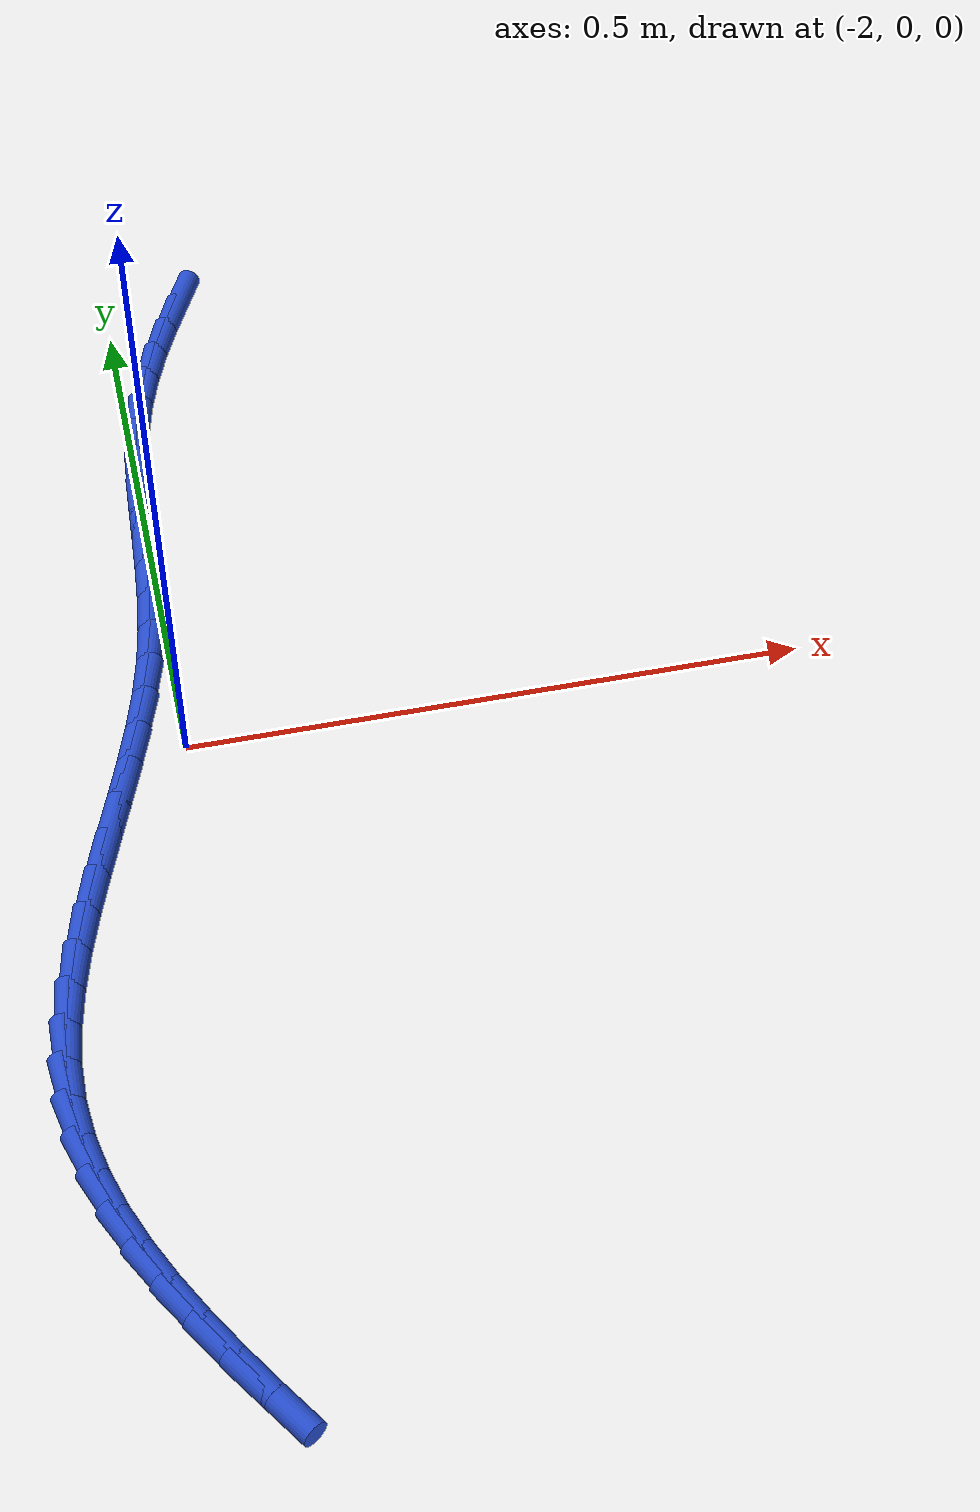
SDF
<sdf version="1.6">
 <world name="default">
  <model name="ground_plane">
   <static>1</static>
   <link name="link">
    <collision name="collision">
     <geometry><plane><normal>0 0 1</normal><size>100 100</size></plane></geometry>
     <surface><friction><ode><mu>100</mu><mu2>50</mu2></ode></friction></surface>
    </collision>
    <visual name="visual">
     <cast_shadows>0</cast_shadows>
     <geometry><plane><normal>0 0 1</normal><size>100 100</size></plane></geometry>
     <material>
      <script><uri>file://media/materials/scripts/gazebo.material</uri><name>Gazebo/WhiteGlow</name></script>
     </material>
    </visual>
   </link>
  </model>
  <model name="line">
   <link name="link_82">
    <pose>-1.934549190054985 0.5253844064788971 0.01 0 1.57 1.1429916028088454</pose>
    <collision name="collision">
     <geometry><cylinder><radius>0.01</radius><length>0.08</length></cylinder></geometry>
    </collision>
    <visual name="visual">
     <material>
      <script><name>Gazebo/Blue</name><uri>file://media/materials/scripts/gazebo.material</uri></script>
     </material>
     <geometry><cylinder><radius>0.01</radius><length>0.08</length></cylinder></geometry>
    </visual>
   </link>
   <link name="link_83">
    <pose>-1.9489851773383136 0.49372422594239274 0.01 0 1.57 1.177477443788008</pose>
    <collision name="collision">
     <geometry><cylinder><radius>0.01</radius><length>0.08</length></cylinder></geometry>
    </collision>
    <visual name="visual">
     <material>
      <script><name>Gazebo/Blue</name><uri>file://media/materials/scripts/gazebo.material</uri></script>
     </material>
     <geometry><cylinder><radius>0.01</radius><length>0.08</length></cylinder></geometry>
    </visual>
   </link>
   <link name="link_84">
    <pose>-1.9621975246120722 0.46188263261865464 0.01 0 1.57 1.2239319103950599</pose>
    <collision name="collision">
     <geometry><cylinder><radius>0.01</radius><length>0.08</length></cylinder></geometry>
    </collision>
    <visual name="visual">
     <material>
      <script><name>Gazebo/Blue</name><uri>file://media/materials/scripts/gazebo.material</uri></script>
     </material>
     <geometry><cylinder><radius>0.01</radius><length>0.08</length></cylinder></geometry>
    </visual>
   </link>
   <link name="link_85">
    <pose>-1.9738176590959098 0.4297365622214939 0.01 0 1.57 1.2825177035107371</pose>
    <collision name="collision">
     <geometry><cylinder><radius>0.01</radius><length>0.08</length></cylinder></geometry>
    </collision>
    <visual name="visual">
     <material>
      <script><name>Gazebo/Blue</name><uri>file://media/materials/scripts/gazebo.material</uri></script>
     </material>
     <geometry><cylinder><radius>0.01</radius><length>0.08</length></cylinder></geometry>
    </visual>
   </link>
   <link name="link_86">
    <pose>-1.9834770080094717 0.3971629504647221 0.01 0 1.57 1.3525835714497194</pose>
    <collision name="collision">
     <geometry><cylinder><radius>0.01</radius><length>0.08</length></cylinder></geometry>
    </collision>
    <visual name="visual">
     <material>
      <script><name>Gazebo/Blue</name><uri>file://media/materials/scripts/gazebo.material</uri></script>
     </material>
     <geometry><cylinder><radius>0.01</radius><length>0.08</length></cylinder></geometry>
    </visual>
   </link>
   <link name="link_87">
    <pose>-1.990821381539933 0.364041926400388 0.01 0 1.57 1.4204549258014072</pose>
    <collision name="collision">
     <geometry><cylinder><radius>0.01</radius><length>0.08</length></cylinder></geometry>
    </collision>
    <visual name="visual">
     <material>
      <script><name>Gazebo/Blue</name><uri>file://media/materials/scripts/gazebo.material</uri></script>
     </material>
     <geometry><cylinder><radius>0.01</radius><length>0.08</length></cylinder></geometry>
    </visual>
   </link>
   <link name="link_88">
    <pose>-1.9959253632970084 0.3303488163034121 0.01 0 1.57 1.4707918321046425</pose>
    <collision name="collision">
     <geometry><cylinder><radius>0.01</radius><length>0.08</length></cylinder></geometry>
    </collision>
    <visual name="visual">
     <material>
      <script><name>Gazebo/Blue</name><uri>file://media/materials/scripts/gazebo.material</uri></script>
     </material>
     <geometry><cylinder><radius>0.01</radius><length>0.08</length></cylinder></geometry>
    </visual>
   </link>
   <link name="link_89">
    <pose>-1.9993550325085527 0.2961680693920715 0.01 0 1.57 1.5029832729504529</pose>
    <collision name="collision">
     <geometry><cylinder><radius>0.01</radius><length>0.08</length></cylinder></geometry>
    </collision>
    <visual name="visual">
     <material>
      <script><name>Gazebo/Blue</name><uri>file://media/materials/scripts/gazebo.material</uri></script>
     </material>
     <geometry><cylinder><radius>0.01</radius><length>0.08</length></cylinder></geometry>
    </visual>
   </link>
   <link name="link_90">
    <pose>-2.0017034691504763 0.2615901296503986 0.01 0 1.57 1.5175201261933395</pose>
    <collision name="collision">
     <geometry><cylinder><radius>0.01</radius><length>0.08</length></cylinder></geometry>
    </collision>
    <visual name="visual">
     <material>
      <script><name>Gazebo/Blue</name><uri>file://media/materials/scripts/gazebo.material</uri></script>
     </material>
     <geometry><cylinder><radius>0.01</radius><length>0.08</length></cylinder></geometry>
    </visual>
   </link>
   <link name="link_91">
    <pose>-2.003563753198689 0.22670544106242596 0.01 0 1.57 1.514867371000532</pose>
    <collision name="collision">
     <geometry><cylinder><radius>0.01</radius><length>0.08</length></cylinder></geometry>
    </collision>
    <visual name="visual">
     <material>
      <script><name>Gazebo/Blue</name><uri>file://media/materials/scripts/gazebo.material</uri></script>
     </material>
     <geometry><cylinder><radius>0.01</radius><length>0.08</length></cylinder></geometry>
    </visual>
   </link>
   <link name="link_92">
    <pose>-2.0055289646291015 0.1916044476121862 0.01 0 1.57 1.4953379256269574</pose>
    <collision name="collision">
     <geometry><cylinder><radius>0.01</radius><length>0.08</length></cylinder></geometry>
    </collision>
    <visual name="visual">
     <material>
      <script><name>Gazebo/Blue</name><uri>file://media/materials/scripts/gazebo.material</uri></script>
     </material>
     <geometry><cylinder><radius>0.01</radius><length>0.08</length></cylinder></geometry>
    </visual>
   </link>
   <link name="link_93">
    <pose>-2.008192183417624 0.15637759328371176 0.01 0 1.57 1.4591230185264452</pose>
    <collision name="collision">
     <geometry><cylinder><radius>0.01</radius><length>0.08</length></cylinder></geometry>
    </collision>
    <visual name="visual">
     <material>
      <script><name>Gazebo/Blue</name><uri>file://media/materials/scripts/gazebo.material</uri></script>
     </material>
     <geometry><cylinder><radius>0.01</radius><length>0.08</length></cylinder></geometry>
    </visual>
   </link>
   <link name="link_94">
    <pose>-2.012146489540166 0.12111532206103517 0.01 0 1.57 1.4064709449296815</pose>
    <collision name="collision">
     <geometry><cylinder><radius>0.01</radius><length>0.08</length></cylinder></geometry>
    </collision>
    <visual name="visual">
     <material>
      <script><name>Gazebo/Blue</name><uri>file://media/materials/scripts/gazebo.material</uri></script>
     </material>
     <geometry><cylinder><radius>0.01</radius><length>0.08</length></cylinder></geometry>
    </visual>
   </link>
   <link name="link_95">
    <pose>-2.0179845801398617 0.08590805603592133 0.01 0 1.57 1.345119470355545</pose>
    <collision name="collision">
     <geometry><cylinder><radius>0.01</radius><length>0.08</length></cylinder></geometry>
    </collision>
    <visual name="visual">
     <material>
      <script><name>Gazebo/Blue</name><uri>file://media/materials/scripts/gazebo.material</uri></script>
     </material>
     <geometry><cylinder><radius>0.01</radius><length>0.08</length></cylinder></geometry>
    </visual>
   </link>
   <link name="link_96">
    <pose>-2.0260377818558566 0.050831270844779744 0.01 0 1.57 1.2949176496692092</pose>
    <collision name="collision">
     <geometry><cylinder><radius>0.01</radius><length>0.08</length></cylinder></geometry>
    </collision>
    <visual name="visual">
     <material>
      <script><name>Gazebo/Blue</name><uri>file://media/materials/scripts/gazebo.material</uri></script>
     </material>
     <geometry><cylinder><radius>0.01</radius><length>0.08</length></cylinder></geometry>
    </visual>
   </link>
   <link name="link_97">
    <pose>-2.0359212200282153 0.015919486199079496 0.01 0 1.57 1.2585591991339506</pose>
    <collision name="collision">
     <geometry><cylinder><radius>0.01</radius><length>0.08</length></cylinder></geometry>
    </collision>
    <visual name="visual">
     <material>
      <script><name>Gazebo/Blue</name><uri>file://media/materials/scripts/gazebo.material</uri></script>
     </material>
     <geometry><cylinder><radius>0.01</radius><length>0.08</length></cylinder></geometry>
    </visual>
   </link>
   <link name="link_98">
    <pose>-2.0471284428254632 -0.018799730572395774 0.01 0 1.57 1.2354164167242352</pose>
    <collision name="collision">
     <geometry><cylinder><radius>0.01</radius><length>0.08</length></cylinder></geometry>
    </collision>
    <visual name="visual">
     <material>
      <script><name>Gazebo/Blue</name><uri>file://media/materials/scripts/gazebo.material</uri></script>
     </material>
     <geometry><cylinder><radius>0.01</radius><length>0.08</length></cylinder></geometry>
    </visual>
   </link>
   <link name="link_99">
    <pose>-2.059152998416123 -0.053298812140862836 0.01 0 1.57 1.2251130691228753</pose>
    <collision name="collision">
     <geometry><cylinder><radius>0.01</radius><length>0.08</length></cylinder></geometry>
    </collision>
    <visual name="visual">
     <material>
      <script><name>Gazebo/Blue</name><uri>file://media/materials/scripts/gazebo.material</uri></script>
     </material>
     <geometry><cylinder><radius>0.01</radius><length>0.08</length></cylinder></geometry>
    </visual>
   </link>
   <link name="link_100">
    <pose>-2.0714884349687206 -0.08755019117753852 0.01 0 1.57 1.227627757805105</pose>
    <collision name="collision">
     <geometry><cylinder><radius>0.01</radius><length>0.08</length></cylinder></geometry>
    </collision>
    <visual name="visual">
     <material>
      <script><name>Gazebo/Blue</name><uri>file://media/materials/scripts/gazebo.material</uri></script>
     </material>
     <geometry><cylinder><radius>0.01</radius><length>0.08</length></cylinder></geometry>
    </visual>
   </link>
   <link name="link_101">
    <pose>-2.083628300651778 -0.1215263003536396 0.01 0 1.57 1.2433525181742935</pose>
    <collision name="collision">
     <geometry><cylinder><radius>0.01</radius><length>0.08</length></cylinder></geometry>
    </collision>
    <visual name="visual">
     <material>
      <script><name>Gazebo/Blue</name><uri>file://media/materials/scripts/gazebo.material</uri></script>
     </material>
     <geometry><cylinder><radius>0.01</radius><length>0.08</length></cylinder></geometry>
    </visual>
   </link>
   <link name="link_102">
    <pose>-2.095066143633821 -0.15519957234038279 0.01 0 1.57 1.2731188553346222</pose>
    <collision name="collision">
     <geometry><cylinder><radius>0.01</radius><length>0.08</length></cylinder></geometry>
    </collision>
    <visual name="visual">
     <material>
      <script><name>Gazebo/Blue</name><uri>file://media/materials/scripts/gazebo.material</uri></script>
     </material>
     <geometry><cylinder><radius>0.01</radius><length>0.08</length></cylinder></geometry>
    </visual>
   </link>
   <link name="link_103">
    <pose>-2.105295512083372 -0.18854243980898494 0.01 0 1.57 1.3181792078964756</pose>
    <collision name="collision">
     <geometry><cylinder><radius>0.01</radius><length>0.08</length></cylinder></geometry>
    </collision>
    <visual name="visual">
     <material>
      <script><name>Gazebo/Blue</name><uri>file://media/materials/scripts/gazebo.material</uri></script>
     </material>
     <geometry><cylinder><radius>0.01</radius><length>0.08</length></cylinder></geometry>
    </visual>
   </link>
   <link name="link_104">
    <pose>-2.1138099541689566 -0.22152733543066283 0.01 0 1.57 1.3800994559619528</pose>
    <collision name="collision">
     <geometry><cylinder><radius>0.01</radius><length>0.08</length></cylinder></geometry>
    </collision>
    <visual name="visual">
     <material>
      <script><name>Gazebo/Blue</name><uri>file://media/materials/scripts/gazebo.material</uri></script>
     </material>
     <geometry><cylinder><radius>0.01</radius><length>0.08</length></cylinder></geometry>
    </visual>
   </link>
   <link name="link_105">
    <pose>-2.120103018059097 -0.2541266918766332 0.01 0 1.57 1.460477206382129</pose>
    <collision name="collision">
     <geometry><cylinder><radius>0.01</radius><length>0.08</length></cylinder></geometry>
    </collision>
    <visual name="visual">
     <material>
      <script><name>Gazebo/Blue</name><uri>file://media/materials/scripts/gazebo.material</uri></script>
     </material>
     <geometry><cylinder><radius>0.01</radius><length>0.08</length></cylinder></geometry>
    </visual>
   </link>
   <link name="link_106">
    <pose>-2.1236682519223185 -0.2863129418181129 0.01 0 1.57 1.5603644604305378</pose>
    <collision name="collision">
     <geometry><cylinder><radius>0.01</radius><length>0.08</length></cylinder></geometry>
    </collision>
    <visual name="visual">
     <material>
      <script><name>Gazebo/Blue</name><uri>file://media/materials/scripts/gazebo.material</uri></script>
     </material>
     <geometry><cylinder><radius>0.01</radius><length>0.08</length></cylinder></geometry>
    </visual>
   </link>
   <link name="link_107">
    <pose>-2.1239994298983396 -0.31805855195292454 0.01 0 1.57 -1.4683606829852118</pose>
    <collision name="collision">
     <geometry><cylinder><radius>0.01</radius><length>0.08</length></cylinder></geometry>
    </collision>
    <visual name="visual">
     <material>
      <script><name>Gazebo/Blue</name><uri>file://media/materials/scripts/gazebo.material</uri></script>
     </material>
     <geometry><cylinder><radius>0.01</radius><length>0.08</length></cylinder></geometry>
    </visual>
   </link>
   <link name="link_108">
    <pose>-2.1207812959409726 -0.3493647450979441 0.01 0 1.57 -1.3624092530120473</pose>
    <collision name="collision">
     <geometry><cylinder><radius>0.01</radius><length>0.08</length></cylinder></geometry>
    </collision>
    <visual name="visual">
     <material>
      <script><name>Gazebo/Blue</name><uri>file://media/materials/scripts/gazebo.material</uri></script>
     </material>
     <geometry><cylinder><radius>0.01</radius><length>0.08</length></cylinder></geometry>
    </visual>
   </link>
   <link name="link_109">
    <pose>-2.11423690656243 -0.3803138028493677 0.01 0 1.57 -1.2690013175188546</pose>
    <collision name="collision">
     <geometry><cylinder><radius>0.01</radius><length>0.08</length></cylinder></geometry>
    </collision>
    <visual name="visual">
     <material>
      <script><name>Gazebo/Blue</name><uri>file://media/materials/scripts/gazebo.material</uri></script>
     </material>
     <geometry><cylinder><radius>0.01</radius><length>0.08</length></cylinder></geometry>
    </visual>
   </link>
   <link name="link_110">
    <pose>-2.1046834863881902 -0.4110021865809076 0.01 0 1.57 -1.1892861205441774</pose>
    <collision name="collision">
     <geometry><cylinder><radius>0.01</radius><length>0.08</length></cylinder></geometry>
    </collision>
    <visual name="visual">
     <material>
      <script><name>Gazebo/Blue</name><uri>file://media/materials/scripts/gazebo.material</uri></script>
     </material>
     <geometry><cylinder><radius>0.01</radius><length>0.08</length></cylinder></geometry>
    </visual>
   </link>
   <link name="link_111">
    <pose>-2.0924382600437355 -0.4415263576662763 0.01 0 1.57 -1.1232569680545494</pose>
    <collision name="collision">
     <geometry><cylinder><radius>0.01</radius><length>0.08</length></cylinder></geometry>
    </collision>
    <visual name="visual">
     <material>
      <script><name>Gazebo/Blue</name><uri>file://media/materials/scripts/gazebo.material</uri></script>
     </material>
     <geometry><cylinder><radius>0.01</radius><length>0.08</length></cylinder></geometry>
    </visual>
   </link>
   <link name="link_112">
    <pose>-2.077818452154546 -0.47198277747918627 0.01 0 1.57 -1.0702138819789229</pose>
    <collision name="collision">
     <geometry><cylinder><radius>0.01</radius><length>0.08</length></cylinder></geometry>
    </collision>
    <visual name="visual">
     <material>
      <script><name>Gazebo/Blue</name><uri>file://media/materials/scripts/gazebo.material</uri></script>
     </material>
     <geometry><cylinder><radius>0.01</radius><length>0.08</length></cylinder></geometry>
    </visual>
   </link>
   <link name="link_113">
    <pose>-2.061141287346102 -0.5024679073933498 0.01 0 1.57 -1.0291498603893867</pose>
    <collision name="collision">
     <geometry><cylinder><radius>0.01</radius><length>0.08</length></cylinder></geometry>
    </collision>
    <visual name="visual">
     <material>
      <script><name>Gazebo/Blue</name><uri>file://media/materials/scripts/gazebo.material</uri></script>
     </material>
     <geometry><cylinder><radius>0.01</radius><length>0.08</length></cylinder></geometry>
    </visual>
   </link>
   <link name="link_114">
    <pose>-2.0427239902438843 -0.5330782087824795 0.01 0 1.57 -0.9990074300479228</pose>
    <collision name="collision">
     <geometry><cylinder><radius>0.01</radius><length>0.08</length></cylinder></geometry>
    </collision>
    <visual name="visual">
     <material>
      <script><name>Gazebo/Blue</name><uri>file://media/materials/scripts/gazebo.material</uri></script>
     </material>
     <geometry><cylinder><radius>0.01</radius><length>0.08</length></cylinder></geometry>
    </visual>
   </link>
   <link name="link_115">
    <pose>-2.0228837854733723 -0.5639101430202874 0.01 0 1.57 -0.9788215324700833</pose>
    <collision name="collision">
     <geometry><cylinder><radius>0.01</radius><length>0.08</length></cylinder></geometry>
    </collision>
    <visual name="visual">
     <material>
      <script><name>Gazebo/Blue</name><uri>file://media/materials/scripts/gazebo.material</uri></script>
     </material>
     <geometry><cylinder><radius>0.01</radius><length>0.08</length></cylinder></geometry>
    </visual>
   </link>
  </model>
 </world>
</sdf>
